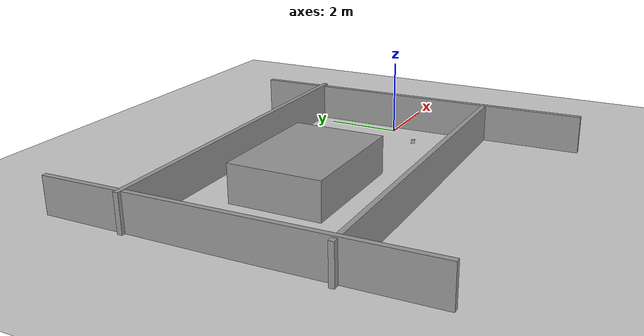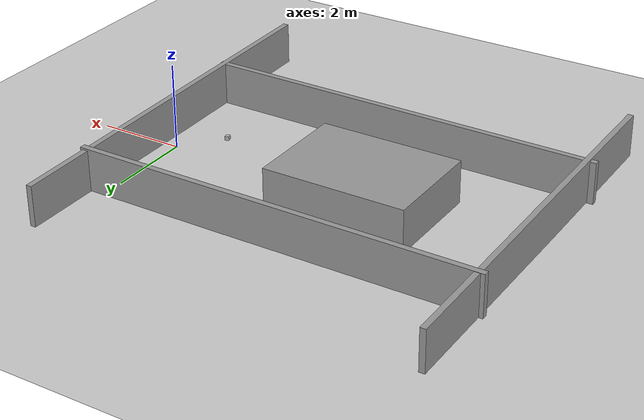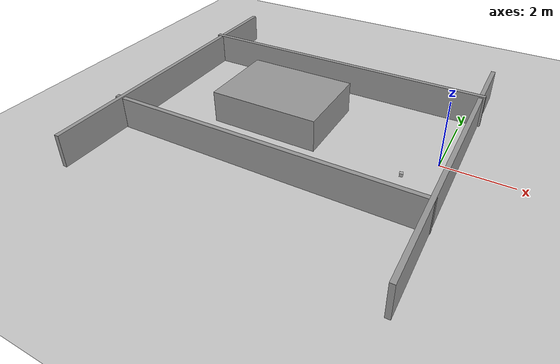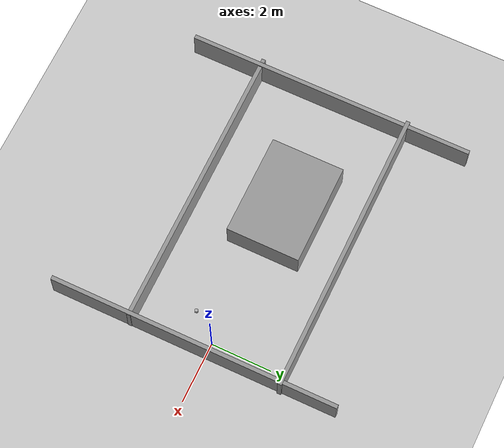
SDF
<sdf version="1.7">
 <world name="default">
  <light name="sun" type="directional">
   <pose>0 0 10 0 -0 0</pose>
   <diffuse>0.8 0.8 0.8 1</diffuse>
   <specular>0.2 0.2 0.2 1</specular>
   <attenuation>
    <range>1000</range>
    <constant>0.9</constant>
    <linear>0.01</linear>
    <quadratic>0.001</quadratic>
   </attenuation>
   <direction>-0.5 0.1 -0.9</direction>
   <spot><inner_angle>0</inner_angle><outer_angle>0</outer_angle><falloff>0</falloff></spot>
  </light>
  <model name="ground_plane">
   <static>1</static>
   <link name="link">
    <collision name="collision">
     <geometry><plane><normal>0 0 1</normal><size>100 100</size></plane></geometry>
     <surface><friction><ode><mu>100</mu><mu2>50</mu2></ode></friction></surface>
    </collision>
    <visual name="visual">
     <cast_shadows>0</cast_shadows>
     <geometry><plane><normal>0 0 1</normal><size>100 100</size></plane></geometry>
     <material>
      <script><uri>file://media/materials/scripts/gazebo.material</uri><name>Gazebo/Grey</name></script>
     </material>
    </visual>
   </link>
  </model>
  <gravity>0 0 -9.8</gravity>
  <magnetic_field>6e-06 2.3e-05 -4.2e-05</magnetic_field>
  <atmosphere type="adiabatic"/>
  <physics type="ode">
   <max_step_size>0.001</max_step_size>
   <real_time_factor>1</real_time_factor>
   <real_time_update_rate>1000</real_time_update_rate>
  </physics>
  <scene><ambient>0.4 0.4 0.4 1</ambient><background>0.7 0.7 0.7 1</background><shadows>1</shadows></scene>
  <audio><device>default</device></audio>
  <spherical_coordinates>
   <surface_model>EARTH_WGS84</surface_model>
   <latitude_deg>0</latitude_deg>
   <longitude_deg>0</longitude_deg>
   <elevation>0</elevation>
   <heading_deg>0</heading_deg>
  </spherical_coordinates>
  <model name="aruco_box_42">
   <static>1</static>
   <pose>-0.760612 -0.890176 0.05 1.30391 1.57079 1.57038</pose>
   <link name="link">
    <inertial>
     <mass>1</mass>
     <inertia>
      <ixx>0.166667</ixx>
      <ixy>0</ixy>
      <ixz>0</ixz>
      <iyy>0.166667</iyy>
      <iyz>0</iyz>
      <izz>0.166667</izz>
     </inertia>
    </inertial>
    <collision name="collision"><geometry><box><size>0.1 0.1 0.1</size></box></geometry></collision>
    <visual name="aruco_box_mesh">
     <geometry><mesh><uri>model://aruco_box_42/model.dae</uri><scale>0.05 0.05 0.05</scale></mesh></geometry>
    </visual>
   </link>
  </model>
  <model name="unit_box">
   <static>1</static>
   <pose>-4.92767 0.158366 0.499699 0 0.000181 0</pose>
   <link name="link">
    <inertial>
     <mass>1</mass>
     <inertia>
      <ixx>0.166667</ixx>
      <ixy>0</ixy>
      <ixz>0</ixz>
      <iyy>0.166667</iyy>
      <iyz>0</iyz>
      <izz>0.166667</izz>
     </inertia>
    </inertial>
    <collision name="collision"><geometry><box><size>3.32902 2.41916 1</size></box></geometry></collision>
    <visual name="visual">
     <geometry><box><size>3.32902 2.41916 1</size></box></geometry>
     <material>
      <script><name>Gazebo/Grey</name><uri>file://media/materials/scripts/gazebo.material</uri></script>
     </material>
    </visual>
   </link>
  </model>
  <model name="unit_box_0">
   <static>1</static>
   <pose>-4.24618 -2.52007 0.482179 -0.008773 -0.003631 -0.000257</pose>
   <link name="link">
    <inertial>
     <mass>1</mass>
     <inertia>
      <ixx>0.166667</ixx>
      <ixy>0</ixy>
      <ixz>0</ixz>
      <iyy>0.166667</iyy>
      <iyz>0</iyz>
      <izz>0.166667</izz>
     </inertia>
    </inertial>
    <collision name="collision"><geometry><box><size>9.51524 0.133058 1</size></box></geometry></collision>
    <visual name="visual">
     <geometry><box><size>9.51524 0.133058 1</size></box></geometry>
     <material>
      <script><name>Gazebo/Grey</name><uri>file://media/materials/scripts/gazebo.material</uri></script>
     </material>
    </visual>
   </link>
  </model>
  <model name="unit_box_0_clone">
   <static>1</static>
   <pose>-4.22373 2.51637 0.482179 -0.008773 -0.003631 -0.000257</pose>
   <link name="link">
    <inertial>
     <mass>1</mass>
     <inertia>
      <ixx>0.166667</ixx>
      <ixy>0</ixy>
      <ixz>0</ixz>
      <iyy>0.166667</iyy>
      <iyz>0</iyz>
      <izz>0.166667</izz>
     </inertia>
    </inertial>
    <collision name="collision"><geometry><box><size>9.51524 0.133058 1</size></box></geometry></collision>
    <visual name="visual">
     <geometry><box><size>9.51524 0.133058 1</size></box></geometry>
     <material>
      <script><name>Gazebo/Grey</name><uri>file://media/materials/scripts/gazebo.material</uri></script>
     </material>
    </visual>
   </link>
  </model>
  <model name="unit_box_0_clone_0">
   <static>1</static>
   <pose>-8.80804 -0.097601 0.482179 0.003589 -0.00879 -1.56623</pose>
   <link name="link">
    <inertial>
     <mass>1</mass>
     <inertia>
      <ixx>0.166667</ixx>
      <ixy>0</ixy>
      <ixz>0</ixz>
      <iyy>0.166667</iyy>
      <iyz>0</iyz>
      <izz>0.166667</izz>
     </inertia>
    </inertial>
    <collision name="collision"><geometry><box><size>9.51524 0.133058 1</size></box></geometry></collision>
    <visual name="visual">
     <geometry><box><size>9.51524 0.133058 1</size></box></geometry>
     <material>
      <script><name>Gazebo/Grey</name><uri>file://media/materials/scripts/gazebo.material</uri></script>
     </material>
    </visual>
   </link>
  </model>
  <model name="unit_box_0_clone_0_clone">
   <static>1</static>
   <pose>0.421552 -0.40456 0.482179 0.003589 -0.00879 -1.56623</pose>
   <link name="link">
    <inertial>
     <mass>1</mass>
     <inertia>
      <ixx>0.166667</ixx>
      <ixy>0</ixy>
      <ixz>0</ixz>
      <iyy>0.166667</iyy>
      <iyz>0</iyz>
      <izz>0.166667</izz>
     </inertia>
    </inertial>
    <collision name="collision"><geometry><box><size>9.51524 0.133058 1</size></box></geometry></collision>
    <visual name="visual">
     <geometry><box><size>9.51524 0.133058 1</size></box></geometry>
     <material>
      <script><name>Gazebo/Grey</name><uri>file://media/materials/scripts/gazebo.material</uri></script>
     </material>
    </visual>
   </link>
  </model>
 </world>
</sdf>
